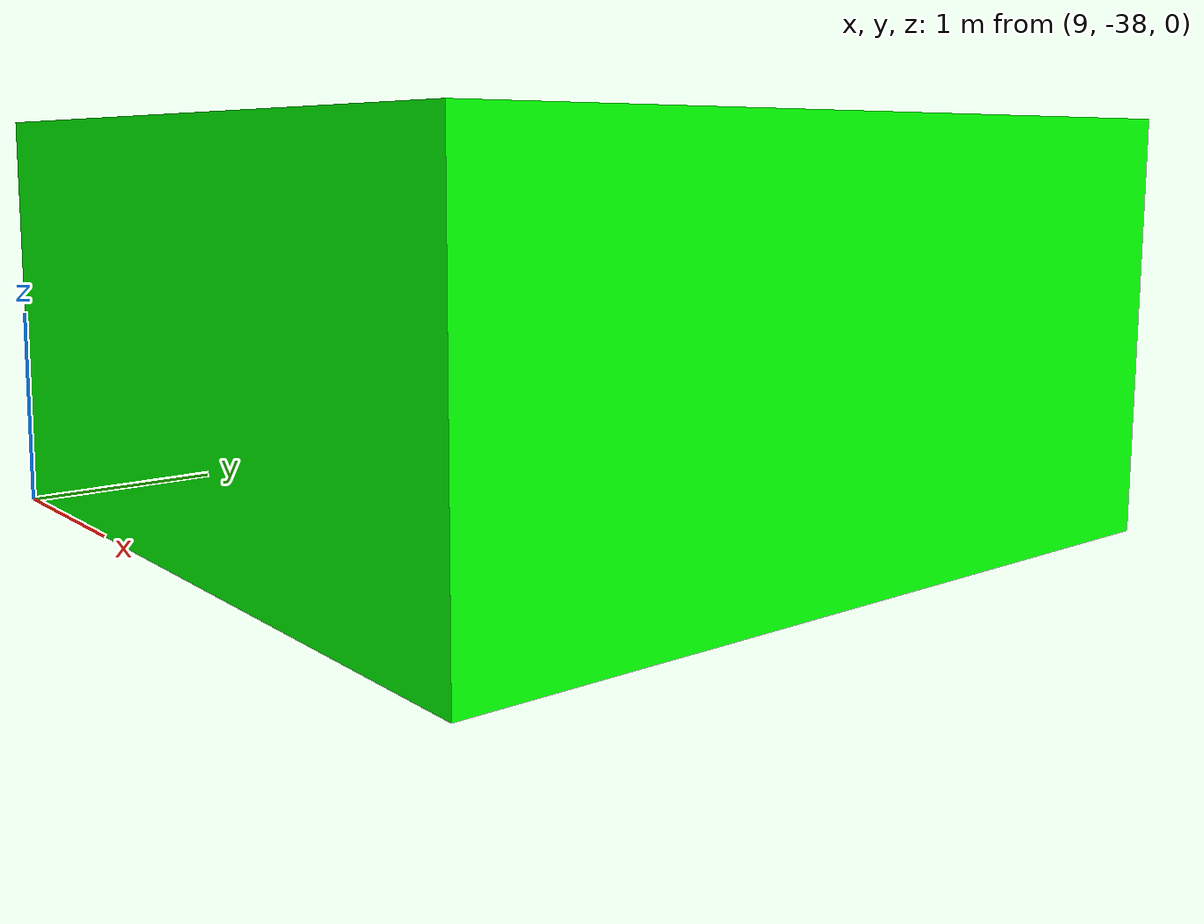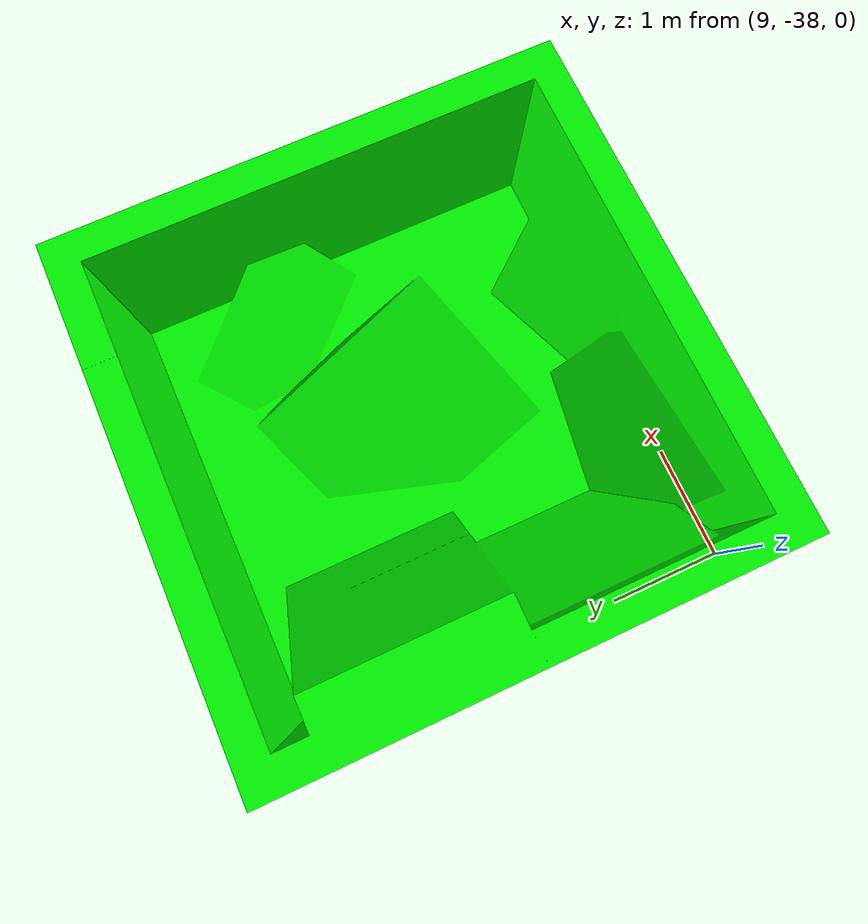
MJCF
<mujoco model="meshes/supporter">
  <asset>
    <mesh file="meshes/supporter/supporter.stl" name="supporter"/>
  </asset>
  <worldbody>
    <body>
      <body name="collision">
        <geom condim="4" density="100" friction="1.5 0.3 0.1" group="1" mesh="supporter" pos="0 0 0" rgba="0 1 0 1" solimp="0.998 0.998 0.001" solref="0.002 1" type="mesh"/>
      </body>
      <body name="visual">
        <geom conaffinity="0" contype="0" group="0" mass="0.0001" mesh="supporter" pos="0 0 0" rgba="0 1 0 1" type="mesh"/>
      </body>
      <site name="bottom_site" pos="0 0 -0.06" rgba="0 0 0 0" size="0.005"/>
      <site name="top_site" pos="0 0 0.04" rgba="0 0 0 0" size="0.005"/>
      <site name="horizontal_radius_site" pos="0.025 0.025 0" rgba="0 0 0 0" size="0.005"/>
    </body>
  </worldbody>
</mujoco>
